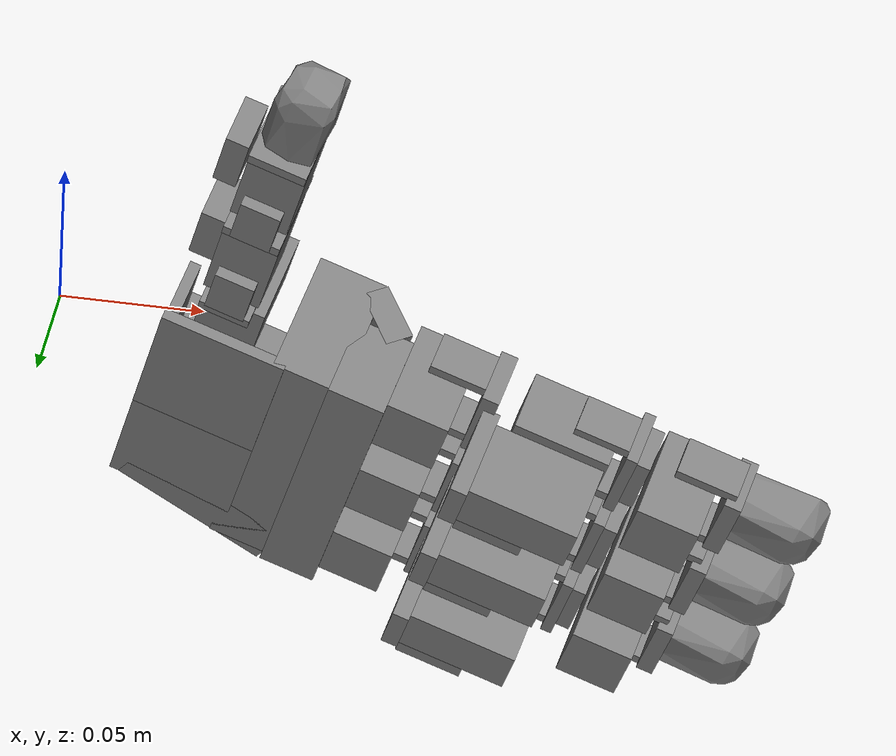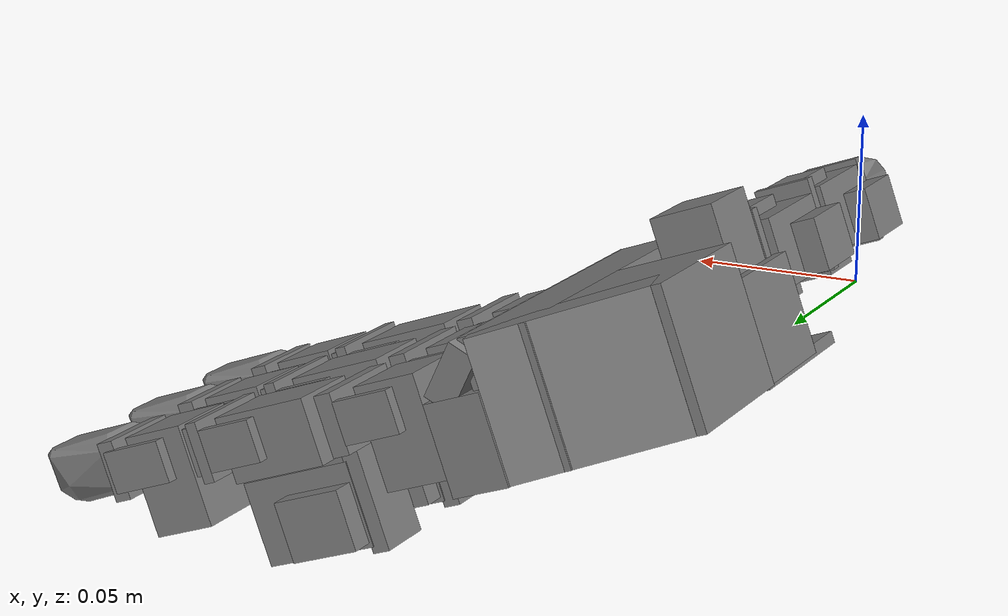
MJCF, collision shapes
<mujoco model="leap_hand">

  <compiler angle="radian" meshdir="./meshes/" texturedir="./meshes/" />
  <option cone="elliptic" impratio="10" />
  <asset>
    <material name="black" rgba="0.2 0.2 0.2 1" />
    <material name="white" rgba="0.9 0.9 0.9 1" />
    <mesh name="leap_mount" file="leap_mount.obj" />
    <mesh name="palm_lower" file="palm_lower.obj" />
    <mesh name="mcp_joint" file="mcp_joint.obj" />
    <mesh name="pip" file="pip.obj" />
    <mesh name="dip" file="dip.obj" />
    <mesh name="fingertip" file="fingertip.obj" />
    <mesh name="white_tip" file="white_tip.obj" />
    <mesh name="thumb_pip" file="thumb_pip.obj" />
    <mesh name="thumb_dip" file="thumb_dip.obj" />
    <mesh name="thumb_fingertip" file="thumb_fingertip.obj" />
    <mesh name="white_tip_thumb" file="white_tip_thumb.obj" />
  </asset>
  <default>
    <position kp="0.25" kv="0.005" />
    <joint frictionloss="0.05" />
    <default class="visual">
      <geom group="2" type="mesh" contype="0" conaffinity="0" density="0" material="black" />
    </default>
    <default class="collision">
      <geom group="3" type="box" mass="0" />
    </default>

    <default class="mcp_joint">
      <joint pos="0 0 0" axis="0 0 -1"
        limited="true" range="-0.314 2.23" />
      <position ctrlrange="-0.314 2.23" />
    </default>
    <default class="pip">
      <joint pos="0 0 0" axis="0 0 -1"
        limited="true" range="-1.047 1.047" />
      <position ctrlrange="-1.047 1.047" />
    </default>
    <default class="dip">
      <joint pos="0 0 0" axis="0 0 -1"
        limited="true" range="-0.506 1.885" />
      <position ctrlrange="-0.506 1.885" />
    </default>
    <default class="fingertip">
      <joint pos="0 0 0" axis="0 0 -1"
        limited="true" range="-0.366 2.042" />
      <position ctrlrange="-0.366 2.042" />
    </default>
    <default class="thumb_base_pip">
      <joint pos="0 0 0" axis="0 0 -1"
        limited="true" range="-0.349 2.094" />
      <position ctrlrange="-0.349 2.094" />
    </default>
    <default class="thumb_pip">
      <joint pos="0 0 0" axis="0 0 -1"
        limited="true" range="-0.349 2.094" />
      <position ctrlrange="-0.349 2.094" />
    </default>
    <default class="thumb_dip">
      <joint pos="0 0 0" axis="0 0 -1"
        limited="true" range="-0.47 2.443" />
      <position ctrlrange="-0.47 2.443" />
    </default>
    <default class="thumb_fingertip">
      <joint pos="0 0 0" axis="0 0 -1"
        limited="true" range="-1.34 1.88" />
      <position ctrlrange="-1.34 1.88" />
    </default>
  </default>

  <!-- Some collision filtering -->
  <contact>
    <exclude body1="palm" body2="mcp_joint" />
    <exclude body1="palm" body2="mcp_joint_2" />
    <exclude body1="palm" body2="mcp_joint_3" />
    <exclude body1="palm" body2="pip" />
    <exclude body1="palm" body2="pip_2" />
    <exclude body1="palm" body2="pip_3" />
    <exclude body1="palm" body2="pip_4" />
    <exclude body1="palm" body2="thumb_pip" />
    <exclude body1="palm" body2="dip" />
    <exclude body1="palm" body2="dip_2" />
    <exclude body1="palm" body2="dip_3" />
    <exclude body1="palm" body2="thumb_dip" />
    <exclude body1="mcp_joint" body2="mcp_joint_2" />
    <exclude body1="mcp_joint" body2="mcp_joint_3" />
    <exclude body1="mcp_joint_2" body2="mcp_joint_3" />
    <exclude body1="pip_4" body2="mcp_joint" />
    <exclude body1="pip_4" body2="mcp_joint_2" />
    <exclude body1="pip_4" body2="mcp_joint_3" />
  </contact>

  <worldbody>
    <body name="mount" pos="0 0 0.00635" quat="1 0 0 0">
      <geom pos="0 0 0" quat="1 0 0 0" class="visual"
          mesh="leap_mount" />

      <!-- WARNING: palm position NOT exact!!! -->
      <body name="palm" pos="0.032 0.007 -0.0335" quat="0 1 0 0.7">
        <inertial pos="0.01 0 0.04" quat="0.707109 0 -0.707105 0" mass="0.237"
          diaginertia="0.00029351 0.00019217 0.00040716" />

        <!-- N.B. visualize the grasp site by removing the group tag-->
        <site name="grasp_site" pos="0.07 0.0 0.1" group="4" />

        <geom pos="0.0346999 0.06375 0.0779998" quat="0.707109 0 -0.707105 0" class="visual"
          mesh="palm_lower" />
        <geom size="0.011 0.013 0.017" pos="0.0109999 0.046 0.0889999" quat="0.707109 0 -0.707105 0"
          class="collision" />
        <geom size="0.011 0.013 0.017" pos="0.0109999 0.001 0.0889999" quat="0.707109 0 -0.707105 0"
          class="collision" />
        <geom size="0.011 0.013 0.017" pos="0.0109999 -0.044 0.0889999" quat="0.707109 0 -0.707105 0"
          class="collision" />
        <geom size="0.029 0.01 0.023" pos="0.0114996 -0.04 0.0319999"
          quat="0.699342 0.104515 -0.699338 -0.104515" class="collision" />
        <geom size="0.01 0.06 0.015" pos="0.00299981 0.003 0.068" quat="0.707109 0 -0.707105 0"
          class="collision" />
        <geom size="0.005 0.06 0.01" pos="0.0239998 0.003 0.0659998" quat="0.923805 0 -0.382864 0"
          class="collision" />
        <geom size="0.012 0.058 0.023" pos="0.0114997 0.005 0.0499999" quat="0.707109 0 -0.707105 0"
          class="collision" />
        <geom size="0.022 0.026 0.023" pos="0.0114995 -0.015 0.0199999" quat="0.707109 0 -0.707105 0"
          class="collision" />
        <geom size="0.002 0.018 0.017" pos="0.00599938 0.029 -3.79588e-08"
          quat="0.707109 0 -0.707105 0"
          class="collision" />
        <geom size="0.022 0.028 0.002" pos="-0.0100005 0.035 0.0200001" quat="0.707109 0 -0.707105 0"
          class="collision" />
        <body name="mcp_joint" pos="0.0187 0.061 0.0909999" quat="0.707109 0.707105 0 0">
          <inertial pos="-0.022516 0.033882 0.016359" quat="0.388092 0.677951 -0.247713 0.573067"
            mass="0.044" diaginertia="1.74972e-05 1.61504e-05 7.21342e-06" />
          <joint name="1" pos="0 0 0" axis="0 0 -1" range="-0.314 2.23" />
          <geom pos="0.0084 0.0077 0.01465" type="mesh" class="visual"
            mesh="mcp_joint" />
          <geom size="0.01 0.003 0.017" pos="0 0.018 0.0147" class="collision" />
          <geom size="0.014 0.02 0.01" pos="-0.027 0.042 0.015" class="collision" />
          <geom size="0.017 0.003 0.01" pos="-0.0262 0.02 0.0146" class="collision" />
          <geom size="0.01 0.012 0.004" pos="-0.0295 0.035 0.029" class="collision" />
          <geom size="0.007 0.01 0.002" pos="0 0.005 0.03" class="collision" />
          <geom size="0.007 0.01 0.002" pos="0 0.005 -0.001" class="collision" />
          <body name="pip" pos="-0.0122 0.0381 0.0145" quat="0.500003 -0.5 -0.499997 0.5">
            <inertial pos="0.0075 -0.0002 -0.011" quat="0 0.707107 0 0.707107" mass="0.032"
              diaginertia="4.8853e-06 4.3733e-06 3.0933e-06" />
            <joint name="0" pos="0 0 0" axis="0 0 -1" range="-1.047 1.047" />
            <geom pos="0.0096 0.0002 0.0007" quat="0.500003 -0.5 -0.5 -0.499997" type="mesh"
              class="visual" mesh="pip" />
            <geom size="0.017 0.013 0.011" pos="0.0075 -0.0002 -0.011" class="collision" />
            <body name="dip" pos="0.015 0.0143 -0.013" quat="0.500003 0.5 -0.5 0.499997">
              <inertial pos="0.0054215 -0.029148 0.015" quat="0.687228 0.687228 0.166487 0.166487"
                mass="0.037" diaginertia="8.28004e-06 8.1598e-06 5.39516e-06" />
              <joint name="2" pos="0 0 0" axis="0 0 -1" range="-0.506 1.885" />
              <geom pos="0.0211 -0.0084 0.0097" quat="2.67949e-08 -1 0 0" type="mesh"
                class="visual" mesh="dip" />
              <geom size="0.008 0.003 0.013" pos="0 -0.02 0.015" class="collision" />
              <geom size="0.01 0.002 0.017" pos="0 -0.016 0.015" class="collision" />
              <geom size="0.007 0.01 0.002" pos="0 -0.0045 0.03" class="collision" />
              <geom size="0.007 0.01 0.002" pos="0 -0.0045 0" class="collision" />
              <geom size="0.017 0.011 0.013" pos="0.0075 -0.035 0.015" class="collision" />
              <body name="fingertip" pos="0 -0.0361 0.0002">
                <inertial pos="-0.0008794 -0.027019 0.014594"
                  quat="0.702905 0.710643 -0.0212937 -0.0214203" mass="0.016"
                  diaginertia="3.71863e-06 3.02396e-06 1.6518e-06" />
                <joint name="3" pos="0 0 0" axis="0 0 -1" range="-0.366 2.042" />
                <geom pos="0.0132 -0.0061 0.0144" quat="2.67949e-08 1 0 0" type="mesh"
                  class="visual" mesh="fingertip" />
                <geom size="0.01 0.003 0.015" pos="0 -0.017 0.015" class="collision" />
                <geom size="0.007 0.011 0.002" pos="0 -0.006 0.03" class="collision" />
                <geom size="0.007 0.011 0.002" pos="0 -0.006 -0.001" class="collision" />
                <geom type="mesh" mesh="white_tip" class="collision" />
                <geom type="mesh" mesh="white_tip" class="visual" material="white" />
              </body>
            </body>
          </body>
        </body>
        <body name="mcp_joint_2" pos="0.0187 0.0156 0.0908999" quat="0.707109 0.707105 0 0">
          <inertial pos="-0.022516 0.033882 0.016359" quat="0.388092 0.677951 -0.247713 0.573067"
            mass="0.044" diaginertia="1.74972e-05 1.61504e-05 7.21342e-06" />
          <joint name="5" pos="0 0 0" axis="0 0 -1" range="-0.314 2.23" />
          <geom pos="0.0084 0.0077 0.01465" type="mesh" class="visual"
            mesh="mcp_joint" />
          <geom size="0.01 0.003 0.017" pos="0 0.018 0.0147" class="collision" />
          <geom size="0.014 0.02 0.01" pos="-0.027 0.042 0.015" class="collision" />
          <geom size="0.017 0.003 0.01" pos="-0.0262 0.02 0.0146" class="collision" />
          <geom size="0.01 0.012 0.004" pos="-0.0295 0.035 0.029" class="collision" />
          <geom size="0.007 0.01 0.002" pos="0 0.005 0.03" class="collision" />
          <geom size="0.007 0.01 0.002" pos="0 0.005 -0.001" class="collision" />
          <body name="pip_2" pos="-0.0122 0.0381 0.0145" quat="0.500003 -0.5 -0.499997 0.5">
            <inertial pos="0.0075 -0.0002 -0.011" quat="0 0.707107 0 0.707107" mass="0.032"
              diaginertia="4.8853e-06 4.3733e-06 3.0933e-06" />
            <joint name="4" pos="0 0 0" axis="0 0 -1" range="-1.047 1.047" />
          <geom pos="0.0096 0.0003 0.0007" quat="0.500003 -0.5 -0.5 -0.499997" type="mesh"
            class="visual" mesh="pip" />
          <geom size="0.017 0.013 0.011" pos="0.0075 -0.0002 -0.011" class="collision" />
          <body name="dip_2" pos="0.015 0.0143 -0.013" quat="0.500003 0.5 -0.5 0.499997">
            <inertial pos="0.0054215 -0.029148 0.015" quat="0.687228 0.687228 0.166487 0.166487"
              mass="0.037" diaginertia="8.28004e-06 8.1598e-06 5.39516e-06" />
            <joint name="6" pos="0 0 0" axis="0 0 -1" range="-0.506 1.885" />
            <geom pos="0.0211 -0.0084 0.0097" quat="1.32679e-06 -1 0 0" type="mesh"
              class="visual" mesh="dip" />
            <geom size="0.008 0.003 0.013" pos="0 -0.02 0.015" class="collision" />
            <geom size="0.01 0.002 0.017" pos="0 -0.016 0.015" class="collision" />
            <geom size="0.007 0.01 0.002" pos="0 -0.0045 0.03" class="collision" />
            <geom size="0.007 0.01 0.002" pos="0 -0.0045 0" class="collision" />
            <geom size="0.017 0.011 0.013" pos="0.0075 -0.035 0.015" class="collision" />
            <body name="fingertip_2" pos="0 -0.0361 0.0002">
              <inertial pos="-0.0008794 -0.027019 0.014594"
                quat="0.702905 0.710643 -0.0212937 -0.0214203" mass="0.016"
                diaginertia="3.71863e-06 3.02396e-06 1.6518e-06" />
              <joint name="7" pos="0 0 0" axis="0 0 -1" range="-0.366 2.042" />
              <geom pos="0.0132 -0.0061 0.0145" quat="1.32679e-06 1 0 0" type="mesh"
                class="visual" mesh="fingertip" />
              <geom size="0.01 0.003 0.015" pos="0 -0.017 0.015" class="collision" />
              <geom size="0.007 0.011 0.002" pos="0 -0.006 0.03" class="collision" />
              <geom size="0.007 0.011 0.002" pos="0 -0.006 -0.001" class="collision" />
              <geom type="mesh" mesh="white_tip" class="collision" />
              <geom type="mesh" mesh="white_tip" class="visual" material="white" />
            </body>
          </body>
        </body>
      </body>
      <body name="mcp_joint_3" pos="0.0187 -0.0298 0.0909099" quat="0.707109 0.707105 0 0">
        <inertial pos="-0.022516 0.033882 0.016359" quat="0.388092 0.677951 -0.247713 0.573067"
          mass="0.044" diaginertia="1.74972e-05 1.61504e-05 7.21342e-06" />
        <joint name="9" pos="0 0 0" axis="0 0 -1" range="-0.314 2.23" />
        <geom pos="0.0084 0.0077 0.01465" type="mesh" class="visual"
          mesh="mcp_joint" />
        <geom size="0.01 0.003 0.017" pos="0 0.018 0.0147" class="collision" />
        <geom size="0.014 0.02 0.01" pos="-0.027 0.042 0.015" class="collision" />
        <geom size="0.017 0.003 0.01" pos="-0.0262 0.02 0.0146" class="collision" />
        <geom size="0.01 0.012 0.004" pos="-0.0295 0.035 0.029" class="collision" />
        <geom size="0.007 0.01 0.002" pos="0 0.005 0.03" class="collision" />
        <geom size="0.007 0.01 0.002" pos="0 0.005 -0.001" class="collision" />
        <body name="pip_3" pos="-0.0122 0.0381 0.0145" quat="0.500003 -0.5 -0.499997 0.5">
          <inertial pos="0.0075 -0.0002 -0.011" quat="0 0.707107 0 0.707107" mass="0.032"
            diaginertia="4.8853e-06 4.3733e-06 3.0933e-06" />
          <joint name="8" pos="0 0 0" axis="0 0 -1" range="-1.047 1.047" />
          <geom pos="0.0096 0.0003 0.0007" quat="0.500003 -0.5 -0.5 -0.499997" type="mesh"
            class="visual" mesh="pip" />
          <geom size="0.017 0.013 0.011" pos="0.0075 -0.0002 -0.011" class="collision" />
          <body name="dip_3" pos="0.015 0.0143 -0.013" quat="0.500003 0.5 -0.5 0.499997">
            <inertial pos="0.0054215 -0.029148 0.015" quat="0.687228 0.687228 0.166487 0.166487"
              mass="0.037" diaginertia="8.28004e-06 8.1598e-06 5.39516e-06" />
            <joint name="10" pos="0 0 0" axis="0 0 -1" range="-0.506 1.885" />
            <geom pos="0.0211 -0.0084 0.0097" quat="1.32679e-06 -1 0 0" type="mesh"
              class="visual" mesh="dip" />
            <geom size="0.008 0.003 0.013" pos="0 -0.02 0.015" class="collision" />
            <geom size="0.01 0.002 0.017" pos="0 -0.016 0.015" class="collision" />
            <geom size="0.007 0.01 0.002" pos="0 -0.0045 0.03" class="collision" />
            <geom size="0.007 0.01 0.002" pos="0 -0.0045 0" class="collision" />
            <geom size="0.017 0.011 0.013" pos="0.0075 -0.035 0.015" class="collision" />
            <body name="fingertip_3" pos="0 -0.03609 0.0002">
              <inertial pos="-0.0008794 -0.027019 0.014594"
                quat="0.702905 0.710643 -0.0212937 -0.0214203" mass="0.016"
                diaginertia="3.71863e-06 3.02396e-06 1.6518e-06" />
              <joint name="11" pos="0 0 0" axis="0 0 -1" range="-0.366 2.042" />
              <geom pos="0.0132 -0.0061 0.0145" quat="1.32679e-06 1 0 0" type="mesh"
                class="visual" mesh="fingertip" />
              <geom size="0.01 0.003 0.015" pos="0 -0.017 0.015" class="collision" />
              <geom size="0.007 0.011 0.002" pos="0 -0.006 0.03" class="collision" />
              <geom size="0.007 0.011 0.002" pos="0 -0.006 -0.001" class="collision" />
              <geom type="mesh" mesh="white_tip" class="collision" />
              <geom type="mesh" mesh="white_tip" class="visual" material="white" />
            </body>
          </body>
        </body>
      </body>
      <body name="pip_4" pos="0.0215996 0.0368 0.0286999">
        <inertial pos="0.0075 -0.0002 -0.011" quat="0 0.707107 0 0.707107" mass="0.032"
          diaginertia="4.8853e-06 4.3733e-06 3.0933e-06" />
        <joint name="12" pos="0 0 0" axis="0 0 -1" range="-0.349 2.094" />
        <geom pos="-0.0053 0.0003 0.00078" quat="0.500003 -0.5 -0.5 -0.499997" type="mesh"
          class="visual" mesh="pip" />
        <geom size="0.017 0.013 0.011" pos="0.0075 -0.0002 -0.011" class="collision" />
        <body name="thumb_pip" pos="0 0.0143 -0.013" quat="0.500003 0.5 -0.5 0.499997">
          <inertial pos="0 0 -0.0070806" quat="0.707107 0.707107 0 0" mass="0.003"
            diaginertia="6.1932e-07 5.351e-07 2.1516e-07" />
          <joint name="13" pos="0 0 0" axis="0 0 -1" range="-0.47 2.443" />
          <geom pos="0.01196 0 -0.0158" quat="0.707109 0.707105 0 0" type="mesh"
            class="visual" mesh="thumb_pip" />
          <geom size="0.009 0.0165 0.002" pos="0 0 -0.0015" class="collision" />
          <geom size="0.007 0.002 0.01" pos="0 -0.015 -0.013" class="collision" />
          <geom size="0.007 0.002 0.01" pos="0 0.015 -0.013" class="collision" />
          <body name="thumb_dip" pos="0 0.0145 -0.017" quat="0.707109 -0.707105 0 0">
            <inertial pos="-0.0020593 0.015912 -0.013733"
              quat="0.698518 0.697382 -0.104933 0.121324"
              mass="0.038" diaginertia="9.87104e-06 9.32653e-06 4.36203e-06" />
            <joint name="14" pos="0 0 0" axis="0 0 -1" range="-1.2 1.9" />
            <geom pos="0.0439 0.0579 -0.0086" type="mesh" class="visual"
              mesh="thumb_dip" />
            <geom size="0.01 0.02 0.012" pos="0 0.0105 -0.014" class="collision" />
            <geom size="0.01 0.002 0.016" pos="0 0.031 -0.015" class="collision" />
            <geom size="0.007 0.01 0.002" pos="0 0.042 0.001" class="collision" />
            <geom size="0.007 0.01 0.002" pos="0 0.042 -0.029" class="collision" />
            <geom size="0.005 0.012 0.009" pos="-0.0135 0.0175 -0.011656" class="collision" />
            <body name="thumb_fingertip" pos="0 0.0466 0.0002" quat="1.32679e-06 0 0 1">
              <inertial pos="0.00096191 -0.024203 -0.014419"
                quat="0.35287 0.311272 -0.632839 0.614904" mass="0.049"
                diaginertia="2.08591e-05 2.0402e-05 4.71335e-06" />
              <joint name="15" pos="0 0 0" axis="0 0 -1" range="-1.34 1.88" />
              <geom pos="0.0625 0.0784 0.0489" type="mesh" class="visual"
                mesh="thumb_fingertip" />
              <geom size="0.01 0.018 0.012" pos="0 -0.0085 -0.015" class="collision" />
              <geom size="0.01 0.002 0.015" pos="0 -0.029 -0.014" class="collision" />
              <geom size="0.004 0.012 0.009" pos="0.015 -0.0175 -0.0115" class="collision" />
              <geom type="mesh" mesh="white_tip_thumb" class="collision" />
              <geom type="mesh" mesh="white_tip_thumb" class="visual" material="white" />
            </body>
          </body>
        </body>
      </body>
    </body>
    </body>
  </worldbody>

  <actuator>
    <position name="1" joint="1" class="mcp_joint" />
    <position name="0" joint="0" class="pip" />
    <position name="2" joint="2" class="dip" />
    <position name="3" joint="3" class="fingertip" />
    <position name="5" joint="5" class="mcp_joint" />
    <position name="4" joint="4" class="pip" />
    <position name="6" joint="6" class="dip" />
    <position name="7" joint="7" class="fingertip" />
    <position name="9" joint="9" class="mcp_joint" />
    <position name="8" joint="8" class="pip" />
    <position name="10" joint="10" class="dip" />
    <position name="11" joint="11" class="fingertip" />
    <position name="12" joint="12" class="thumb_base_pip" />
    <position name="13" joint="13" class="thumb_pip" />
    <position name="14" joint="14" class="thumb_dip" />
    <position name="15" joint="15" class="thumb_fingertip" />
  </actuator>

  <sensor>
    <framepos name="trace1" objtype="body" objname="fingertip" />
    <framepos name="trace2" objtype="body" objname="fingertip_2" />
    <framepos name="trace3" objtype="body" objname="fingertip_3" />
    <framepos name="trace4" objtype="body" objname="thumb_fingertip" />
  </sensor>
</mujoco>
